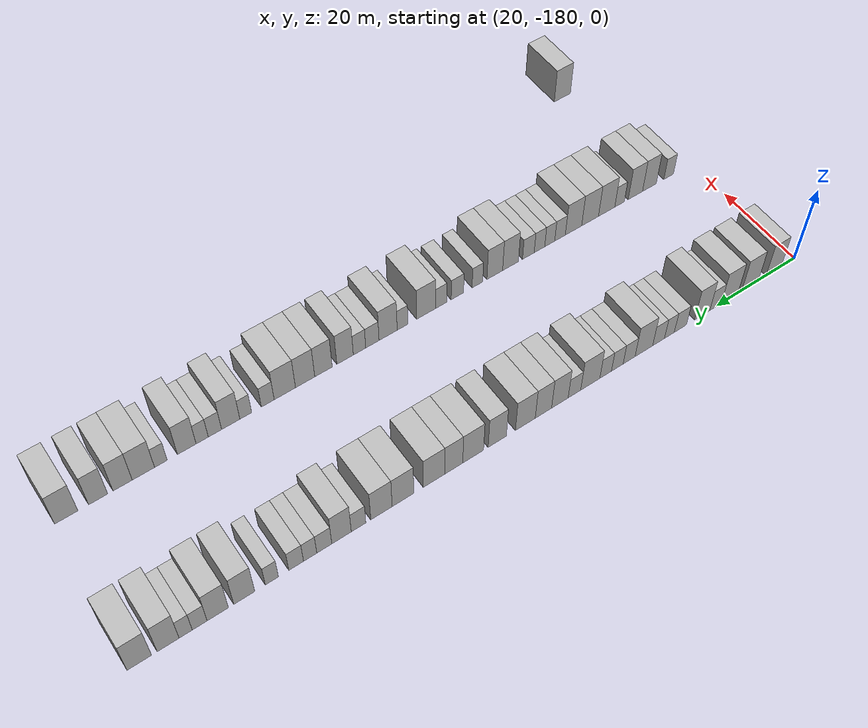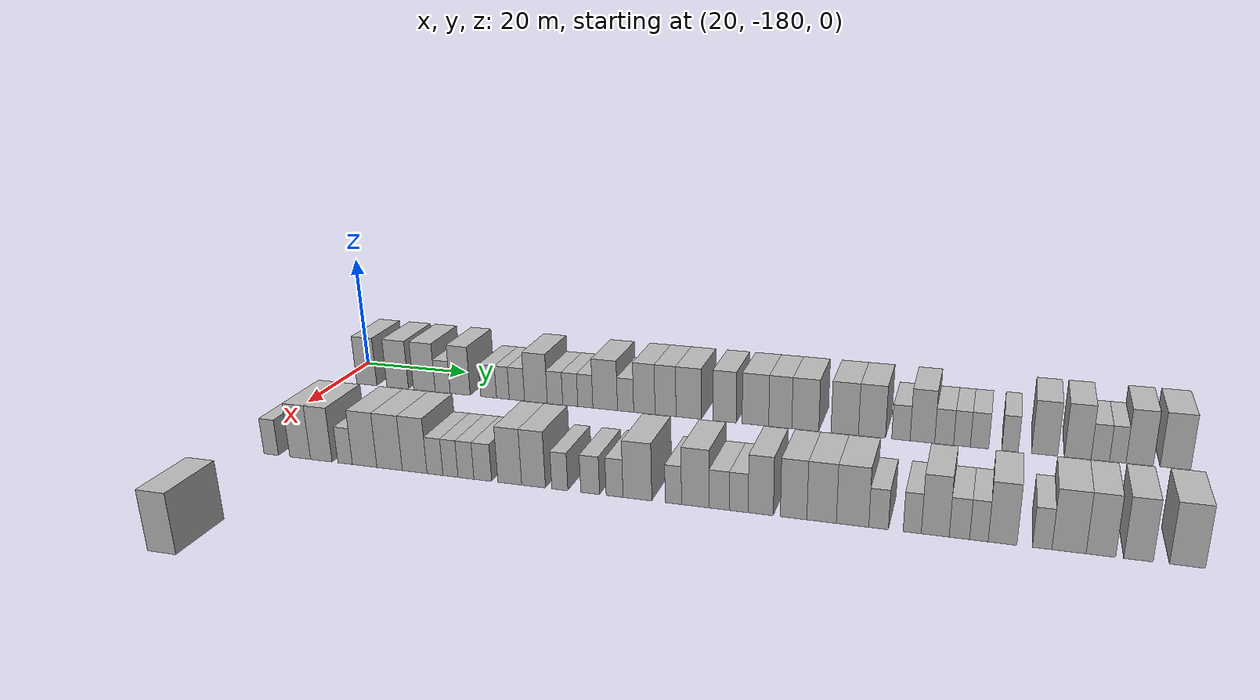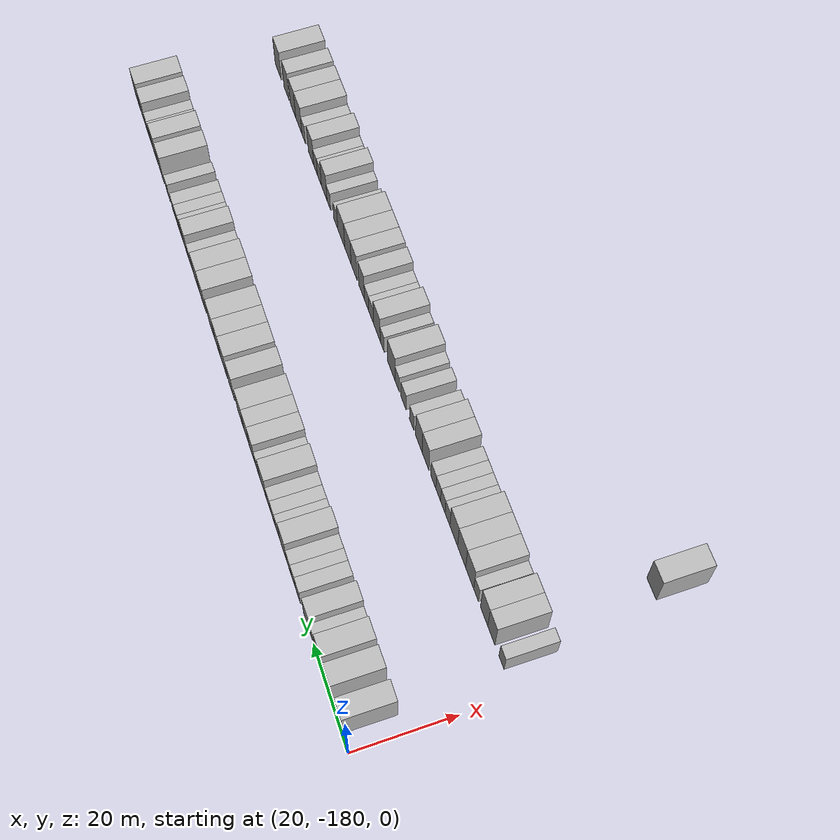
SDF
<sdf version="1.6">
 <world name="default">
  <model name="building_74">
   <static>1</static>
   <pose>25.0000 -174.5573 0 0.000000 0.000000 0.000000</pose>
   <link name="link">
    <pose>0 0 4.50 0 0 0</pose>
    <collision name="collision"><geometry><box><size>10.0000 4.0195 9.0000</size></box></geometry></collision>
    <visual name="visual">
     <cast_shadows>0</cast_shadows>
     <geometry><box><size>10.0000 4.0195 9.0000</size></box></geometry>
     <material>
      <script>
       <uri>model://HANNAS_wall/materials/scripts</uri>
       <uri>model://HANNAS_wall/materials/textures</uri>
       <name>vrc/HANNAS_wall</name>
      </script>
     </material>
    </visual>
   </link>
  </model>
  <model name="building_75">
   <static>1</static>
   <pose>25.0000 -168.4147 0 0.000000 0.000000 0.000000</pose>
   <link name="link">
    <pose>0 0 4.50 0 0 0</pose>
    <collision name="collision"><geometry><box><size>10.0000 4.2658 9.0000</size></box></geometry></collision>
    <visual name="visual">
     <cast_shadows>0</cast_shadows>
     <geometry><box><size>10.0000 4.2658 9.0000</size></box></geometry>
     <material>
      <script>
       <uri>model://HANNAS_wall/materials/scripts</uri>
       <uri>model://HANNAS_wall/materials/textures</uri>
       <name>vrc/HANNAS_wall</name>
      </script>
     </material>
    </visual>
   </link>
  </model>
  <model name="building_76">
   <static>1</static>
   <pose>25.0000 -163.1698 0 0.000000 0.000000 0.000000</pose>
   <link name="link">
    <pose>0 0 4.50 0 0 0</pose>
    <collision name="collision"><geometry><box><size>10.0000 4.2240 9.0000</size></box></geometry></collision>
    <visual name="visual">
     <cast_shadows>0</cast_shadows>
     <geometry><box><size>10.0000 4.2240 9.0000</size></box></geometry>
     <material>
      <script>
       <uri>model://HANNAS_wall/materials/scripts</uri>
       <uri>model://HANNAS_wall/materials/textures</uri>
       <name>vrc/HANNAS_wall</name>
      </script>
     </material>
    </visual>
   </link>
  </model>
  <model name="building_77">
   <static>1</static>
   <pose>25.0000 -159.6030 0 0.000000 0.000000 0.000000</pose>
   <link name="link">
    <pose>0 0 3.00 0 0 0</pose>
    <collision name="collision"><geometry><box><size>10.0000 2.9098 6.0000</size></box></geometry></collision>
    <visual name="visual">
     <cast_shadows>0</cast_shadows>
     <geometry><box><size>10.0000 2.9098 6.0000</size></box></geometry>
     <material>
      <script>
       <uri>model://HANNAS_wall/materials/scripts</uri>
       <uri>model://HANNAS_wall/materials/textures</uri>
       <name>vrc/HANNAS_wall</name>
      </script>
     </material>
    </visual>
   </link>
  </model>
  <model name="building_78">
   <static>1</static>
   <pose>25.0000 -156.2259 0 0.000000 0.000000 0.000000</pose>
   <link name="link">
    <pose>0 0 4.50 0 0 0</pose>
    <collision name="collision"><geometry><box><size>10.0000 3.8443 9.0000</size></box></geometry></collision>
    <visual name="visual">
     <cast_shadows>0</cast_shadows>
     <geometry><box><size>10.0000 3.8443 9.0000</size></box></geometry>
     <material>
      <script>
       <uri>model://HANNAS_wall/materials/scripts</uri>
       <uri>model://HANNAS_wall/materials/textures</uri>
       <name>vrc/HANNAS_wall</name>
      </script>
     </material>
    </visual>
   </link>
  </model>
  <model name="building_79">
   <static>1</static>
   <pose>25.0000 -150.8061 0 0.000000 0.000000 0.000000</pose>
   <link name="link">
    <pose>0 0 3.00 0 0 0</pose>
    <collision name="collision"><geometry><box><size>10.0000 2.9952 6.0000</size></box></geometry></collision>
    <visual name="visual">
     <cast_shadows>0</cast_shadows>
     <geometry><box><size>10.0000 2.9952 6.0000</size></box></geometry>
     <material>
      <script>
       <uri>model://HANNAS_wall/materials/scripts</uri>
       <uri>model://HANNAS_wall/materials/textures</uri>
       <name>vrc/HANNAS_wall</name>
      </script>
     </material>
    </visual>
   </link>
  </model>
  <model name="building_80">
   <static>1</static>
   <pose>25.0000 -148.1057 0 0.000000 0.000000 0.000000</pose>
   <link name="link">
    <pose>0 0 3.00 0 0 0</pose>
    <collision name="collision"><geometry><box><size>10.0000 2.4057 6.0000</size></box></geometry></collision>
    <visual name="visual">
     <cast_shadows>0</cast_shadows>
     <geometry><box><size>10.0000 2.4057 6.0000</size></box></geometry>
     <material>
      <script>
       <uri>model://HANNAS_wall/materials/scripts</uri>
       <uri>model://HANNAS_wall/materials/textures</uri>
       <name>vrc/HANNAS_wall</name>
      </script>
     </material>
    </visual>
   </link>
  </model>
  <model name="building_81">
   <static>1</static>
   <pose>25.0000 -145.4674 0 0.000000 0.000000 0.000000</pose>
   <link name="link">
    <pose>0 0 3.00 0 0 0</pose>
    <collision name="collision"><geometry><box><size>10.0000 2.8709 6.0000</size></box></geometry></collision>
    <visual name="visual">
     <cast_shadows>0</cast_shadows>
     <geometry><box><size>10.0000 2.8709 6.0000</size></box></geometry>
     <material>
      <script>
       <uri>model://HANNAS_wall/materials/scripts</uri>
       <uri>model://HANNAS_wall/materials/textures</uri>
       <name>vrc/HANNAS_wall</name>
      </script>
     </material>
    </visual>
   </link>
  </model>
  <model name="building_82">
   <static>1</static>
   <pose>25.0000 -141.9164 0 0.000000 0.000000 0.000000</pose>
   <link name="link">
    <pose>0 0 4.50 0 0 0</pose>
    <collision name="collision"><geometry><box><size>10.0000 4.2312 9.0000</size></box></geometry></collision>
    <visual name="visual">
     <cast_shadows>0</cast_shadows>
     <geometry><box><size>10.0000 4.2312 9.0000</size></box></geometry>
     <material>
      <script>
       <uri>model://HANNAS_wall/materials/scripts</uri>
       <uri>model://HANNAS_wall/materials/textures</uri>
       <name>vrc/HANNAS_wall</name>
      </script>
     </material>
    </visual>
   </link>
  </model>
  <model name="building_83">
   <static>1</static>
   <pose>25.0000 -138.3829 0 0.000000 0.000000 0.000000</pose>
   <link name="link">
    <pose>0 0 3.00 0 0 0</pose>
    <collision name="collision"><geometry><box><size>10.0000 2.8357 6.0000</size></box></geometry></collision>
    <visual name="visual">
     <cast_shadows>0</cast_shadows>
     <geometry><box><size>10.0000 2.8357 6.0000</size></box></geometry>
     <material>
      <script>
       <uri>model://HANNAS_wall/materials/scripts</uri>
       <uri>model://HANNAS_wall/materials/textures</uri>
       <name>vrc/HANNAS_wall</name>
      </script>
     </material>
    </visual>
   </link>
  </model>
  <model name="building_84">
   <static>1</static>
   <pose>25.0000 -135.5813 0 0.000000 0.000000 0.000000</pose>
   <link name="link">
    <pose>0 0 3.00 0 0 0</pose>
    <collision name="collision"><geometry><box><size>10.0000 2.7675 6.0000</size></box></geometry></collision>
    <visual name="visual">
     <cast_shadows>0</cast_shadows>
     <geometry><box><size>10.0000 2.7675 6.0000</size></box></geometry>
     <material>
      <script>
       <uri>model://HANNAS_wall/materials/scripts</uri>
       <uri>model://HANNAS_wall/materials/textures</uri>
       <name>vrc/HANNAS_wall</name>
      </script>
     </material>
    </visual>
   </link>
  </model>
  <model name="building_85">
   <static>1</static>
   <pose>25.0000 -132.8319 0 0.000000 0.000000 0.000000</pose>
   <link name="link">
    <pose>0 0 3.00 0 0 0</pose>
    <collision name="collision"><geometry><box><size>10.0000 2.7314 6.0000</size></box></geometry></collision>
    <visual name="visual">
     <cast_shadows>0</cast_shadows>
     <geometry><box><size>10.0000 2.7314 6.0000</size></box></geometry>
     <material>
      <script>
       <uri>model://HANNAS_wall/materials/scripts</uri>
       <uri>model://HANNAS_wall/materials/textures</uri>
       <name>vrc/HANNAS_wall</name>
      </script>
     </material>
    </visual>
   </link>
  </model>
  <model name="building_86">
   <static>1</static>
   <pose>25.0000 -129.2429 0 0.000000 0.000000 0.000000</pose>
   <link name="link">
    <pose>0 0 4.50 0 0 0</pose>
    <collision name="collision"><geometry><box><size>10.0000 4.4465 9.0000</size></box></geometry></collision>
    <visual name="visual">
     <cast_shadows>0</cast_shadows>
     <geometry><box><size>10.0000 4.4465 9.0000</size></box></geometry>
     <material>
      <script>
       <uri>model://HANNAS_wall/materials/scripts</uri>
       <uri>model://HANNAS_wall/materials/textures</uri>
       <name>vrc/HANNAS_wall</name>
      </script>
     </material>
    </visual>
   </link>
  </model>
  <model name="building_87">
   <static>1</static>
   <pose>25.0000 -125.5737 0 0.000000 0.000000 0.000000</pose>
   <link name="link">
    <pose>0 0 3.00 0 0 0</pose>
    <collision name="collision"><geometry><box><size>10.0000 2.8920 6.0000</size></box></geometry></collision>
    <visual name="visual">
     <cast_shadows>0</cast_shadows>
     <geometry><box><size>10.0000 2.8920 6.0000</size></box></geometry>
     <material>
      <script>
       <uri>model://HANNAS_wall/materials/scripts</uri>
       <uri>model://HANNAS_wall/materials/textures</uri>
       <name>vrc/HANNAS_wall</name>
      </script>
     </material>
    </visual>
   </link>
  </model>
  <model name="building_88">
   <static>1</static>
   <pose>25.0000 -122.2355 0 0.000000 0.000000 0.000000</pose>
   <link name="link">
    <pose>0 0 4.50 0 0 0</pose>
    <collision name="collision"><geometry><box><size>10.0000 3.7842 9.0000</size></box></geometry></collision>
    <visual name="visual">
     <cast_shadows>0</cast_shadows>
     <geometry><box><size>10.0000 3.7842 9.0000</size></box></geometry>
     <material>
      <script>
       <uri>model://HANNAS_wall/materials/scripts</uri>
       <uri>model://HANNAS_wall/materials/textures</uri>
       <name>vrc/HANNAS_wall</name>
      </script>
     </material>
    </visual>
   </link>
  </model>
  <model name="building_89">
   <static>1</static>
   <pose>25.0000 -118.4990 0 0.000000 0.000000 0.000000</pose>
   <link name="link">
    <pose>0 0 4.50 0 0 0</pose>
    <collision name="collision"><geometry><box><size>10.0000 3.6889 9.0000</size></box></geometry></collision>
    <visual name="visual">
     <cast_shadows>0</cast_shadows>
     <geometry><box><size>10.0000 3.6889 9.0000</size></box></geometry>
     <material>
      <script>
       <uri>model://HANNAS_wall/materials/scripts</uri>
       <uri>model://HANNAS_wall/materials/textures</uri>
       <name>vrc/HANNAS_wall</name>
      </script>
     </material>
    </visual>
   </link>
  </model>
  <model name="building_90">
   <static>1</static>
   <pose>25.0000 -114.4479 0 0.000000 0.000000 0.000000</pose>
   <link name="link">
    <pose>0 0 4.50 0 0 0</pose>
    <collision name="collision"><geometry><box><size>10.0000 4.4132 9.0000</size></box></geometry></collision>
    <visual name="visual">
     <cast_shadows>0</cast_shadows>
     <geometry><box><size>10.0000 4.4132 9.0000</size></box></geometry>
     <material>
      <script>
       <uri>model://HANNAS_wall/materials/scripts</uri>
       <uri>model://HANNAS_wall/materials/textures</uri>
       <name>vrc/HANNAS_wall</name>
      </script>
     </material>
    </visual>
   </link>
  </model>
  <model name="building_91">
   <static>1</static>
   <pose>25.0000 -108.2431 0 0.000000 0.000000 0.000000</pose>
   <link name="link">
    <pose>0 0 4.50 0 0 0</pose>
    <collision name="collision"><geometry><box><size>10.0000 3.9962 9.0000</size></box></geometry></collision>
    <visual name="visual">
     <cast_shadows>0</cast_shadows>
     <geometry><box><size>10.0000 3.9962 9.0000</size></box></geometry>
     <material>
      <script>
       <uri>model://HANNAS_wall/materials/scripts</uri>
       <uri>model://HANNAS_wall/materials/textures</uri>
       <name>vrc/HANNAS_wall</name>
      </script>
     </material>
    </visual>
   </link>
  </model>
  <model name="building_92">
   <static>1</static>
   <pose>25.0000 -102.9992 0 0.000000 0.000000 0.000000</pose>
   <link name="link">
    <pose>0 0 4.50 0 0 0</pose>
    <collision name="collision"><geometry><box><size>10.0000 4.4916 9.0000</size></box></geometry></collision>
    <visual name="visual">
     <cast_shadows>0</cast_shadows>
     <geometry><box><size>10.0000 4.4916 9.0000</size></box></geometry>
     <material>
      <script>
       <uri>model://HANNAS_wall/materials/scripts</uri>
       <uri>model://HANNAS_wall/materials/textures</uri>
       <name>vrc/HANNAS_wall</name>
      </script>
     </material>
    </visual>
   </link>
  </model>
  <model name="building_93">
   <static>1</static>
   <pose>25.0000 -98.8216 0 0.000000 0.000000 0.000000</pose>
   <link name="link">
    <pose>0 0 4.50 0 0 0</pose>
    <collision name="collision"><geometry><box><size>10.0000 3.8637 9.0000</size></box></geometry></collision>
    <visual name="visual">
     <cast_shadows>0</cast_shadows>
     <geometry><box><size>10.0000 3.8637 9.0000</size></box></geometry>
     <material>
      <script>
       <uri>model://HANNAS_wall/materials/scripts</uri>
       <uri>model://HANNAS_wall/materials/textures</uri>
       <name>vrc/HANNAS_wall</name>
      </script>
     </material>
    </visual>
   </link>
  </model>
  <model name="building_94">
   <static>1</static>
   <pose>25.0000 -94.6421 0 0.000000 0.000000 0.000000</pose>
   <link name="link">
    <pose>0 0 4.50 0 0 0</pose>
    <collision name="collision"><geometry><box><size>10.0000 4.4952 9.0000</size></box></geometry></collision>
    <visual name="visual">
     <cast_shadows>0</cast_shadows>
     <geometry><box><size>10.0000 4.4952 9.0000</size></box></geometry>
     <material>
      <script>
       <uri>model://HANNAS_wall/materials/scripts</uri>
       <uri>model://HANNAS_wall/materials/textures</uri>
       <name>vrc/HANNAS_wall</name>
      </script>
     </material>
    </visual>
   </link>
  </model>
  <model name="building_95">
   <static>1</static>
   <pose>25.0000 -88.1537 0 0.000000 0.000000 0.000000</pose>
   <link name="link">
    <pose>0 0 4.50 0 0 0</pose>
    <collision name="collision"><geometry><box><size>10.0000 4.4817 9.0000</size></box></geometry></collision>
    <visual name="visual">
     <cast_shadows>0</cast_shadows>
     <geometry><box><size>10.0000 4.4817 9.0000</size></box></geometry>
     <material>
      <script>
       <uri>model://HANNAS_wall/materials/scripts</uri>
       <uri>model://HANNAS_wall/materials/textures</uri>
       <name>vrc/HANNAS_wall</name>
      </script>
     </material>
    </visual>
   </link>
  </model>
  <model name="building_96">
   <static>1</static>
   <pose>25.0000 -83.7280 0 0.000000 0.000000 0.000000</pose>
   <link name="link">
    <pose>0 0 4.50 0 0 0</pose>
    <collision name="collision"><geometry><box><size>10.0000 4.3697 9.0000</size></box></geometry></collision>
    <visual name="visual">
     <cast_shadows>0</cast_shadows>
     <geometry><box><size>10.0000 4.3697 9.0000</size></box></geometry>
     <material>
      <script>
       <uri>model://HANNAS_wall/materials/scripts</uri>
       <uri>model://HANNAS_wall/materials/textures</uri>
       <name>vrc/HANNAS_wall</name>
      </script>
     </material>
    </visual>
   </link>
  </model>
  <model name="building_97">
   <static>1</static>
   <pose>25.0000 -79.0770 0 0.000000 0.000000 0.000000</pose>
   <link name="link">
    <pose>0 0 3.00 0 0 0</pose>
    <collision name="collision"><geometry><box><size>10.0000 2.9321 6.0000</size></box></geometry></collision>
    <visual name="visual">
     <cast_shadows>0</cast_shadows>
     <geometry><box><size>10.0000 2.9321 6.0000</size></box></geometry>
     <material>
      <script>
       <uri>model://HANNAS_wall/materials/scripts</uri>
       <uri>model://HANNAS_wall/materials/textures</uri>
       <name>vrc/HANNAS_wall</name>
      </script>
     </material>
    </visual>
   </link>
  </model>
  <model name="building_98">
   <static>1</static>
   <pose>25.0000 -75.6695 0 0.000000 0.000000 0.000000</pose>
   <link name="link">
    <pose>0 0 4.50 0 0 0</pose>
    <collision name="collision"><geometry><box><size>10.0000 3.8829 9.0000</size></box></geometry></collision>
    <visual name="visual">
     <cast_shadows>0</cast_shadows>
     <geometry><box><size>10.0000 3.8829 9.0000</size></box></geometry>
     <material>
      <script>
       <uri>model://HANNAS_wall/materials/scripts</uri>
       <uri>model://HANNAS_wall/materials/textures</uri>
       <name>vrc/HANNAS_wall</name>
      </script>
     </material>
    </visual>
   </link>
  </model>
  <model name="building_99">
   <static>1</static>
   <pose>25.0000 -72.2417 0 0.000000 0.000000 0.000000</pose>
   <link name="link">
    <pose>0 0 3.00 0 0 0</pose>
    <collision name="collision"><geometry><box><size>10.0000 2.9727 6.0000</size></box></geometry></collision>
    <visual name="visual">
     <cast_shadows>0</cast_shadows>
     <geometry><box><size>10.0000 2.9727 6.0000</size></box></geometry>
     <material>
      <script>
       <uri>model://HANNAS_wall/materials/scripts</uri>
       <uri>model://HANNAS_wall/materials/textures</uri>
       <name>vrc/HANNAS_wall</name>
      </script>
     </material>
    </visual>
   </link>
  </model>
  <model name="building_100">
   <static>1</static>
   <pose>25.0000 -69.4564 0 0.000000 0.000000 0.000000</pose>
   <link name="link">
    <pose>0 0 3.00 0 0 0</pose>
    <collision name="collision"><geometry><box><size>10.0000 2.5979 6.0000</size></box></geometry></collision>
    <visual name="visual">
     <cast_shadows>0</cast_shadows>
     <geometry><box><size>10.0000 2.5979 6.0000</size></box></geometry>
     <material>
      <script>
       <uri>model://HANNAS_wall/materials/scripts</uri>
       <uri>model://HANNAS_wall/materials/textures</uri>
       <name>vrc/HANNAS_wall</name>
      </script>
     </material>
    </visual>
   </link>
  </model>
  <model name="building_101">
   <static>1</static>
   <pose>25.0000 -66.7267 0 0.000000 0.000000 0.000000</pose>
   <link name="link">
    <pose>0 0 3.00 0 0 0</pose>
    <collision name="collision"><geometry><box><size>10.0000 2.8617 6.0000</size></box></geometry></collision>
    <visual name="visual">
     <cast_shadows>0</cast_shadows>
     <geometry><box><size>10.0000 2.8617 6.0000</size></box></geometry>
     <material>
      <script>
       <uri>model://HANNAS_wall/materials/scripts</uri>
       <uri>model://HANNAS_wall/materials/textures</uri>
       <name>vrc/HANNAS_wall</name>
      </script>
     </material>
    </visual>
   </link>
  </model>
  <model name="building_102">
   <static>1</static>
   <pose>25.0000 -62.0314 0 0.000000 0.000000 0.000000</pose>
   <link name="link">
    <pose>0 0 3.00 0 0 0</pose>
    <collision name="collision"><geometry><box><size>10.0000 2.5289 6.0000</size></box></geometry></collision>
    <visual name="visual">
     <cast_shadows>0</cast_shadows>
     <geometry><box><size>10.0000 2.5289 6.0000</size></box></geometry>
     <material>
      <script>
       <uri>model://HANNAS_wall/materials/scripts</uri>
       <uri>model://HANNAS_wall/materials/textures</uri>
       <name>vrc/HANNAS_wall</name>
      </script>
     </material>
    </visual>
   </link>
  </model>
  <model name="building_103">
   <static>1</static>
   <pose>25.0000 -56.7847 0 0.000000 0.000000 0.000000</pose>
   <link name="link">
    <pose>0 0 4.50 0 0 0</pose>
    <collision name="collision"><geometry><box><size>10.0000 3.9644 9.0000</size></box></geometry></collision>
    <visual name="visual">
     <cast_shadows>0</cast_shadows>
     <geometry><box><size>10.0000 3.9644 9.0000</size></box></geometry>
     <material>
      <script>
       <uri>model://HANNAS_wall/materials/scripts</uri>
       <uri>model://HANNAS_wall/materials/textures</uri>
       <name>vrc/HANNAS_wall</name>
      </script>
     </material>
    </visual>
   </link>
  </model>
  <model name="building_104">
   <static>1</static>
   <pose>25.0000 -51.8219 0 0.000000 0.000000 0.000000</pose>
   <link name="link">
    <pose>0 0 4.50 0 0 0</pose>
    <collision name="collision"><geometry><box><size>10.0000 3.9611 9.0000</size></box></geometry></collision>
    <visual name="visual">
     <cast_shadows>0</cast_shadows>
     <geometry><box><size>10.0000 3.9611 9.0000</size></box></geometry>
     <material>
      <script>
       <uri>model://HANNAS_wall/materials/scripts</uri>
       <uri>model://HANNAS_wall/materials/textures</uri>
       <name>vrc/HANNAS_wall</name>
      </script>
     </material>
    </visual>
   </link>
  </model>
  <model name="building_105">
   <static>1</static>
   <pose>25.0000 -48.4789 0 0.000000 0.000000 0.000000</pose>
   <link name="link">
    <pose>0 0 3.00 0 0 0</pose>
    <collision name="collision"><geometry><box><size>10.0000 2.7249 6.0000</size></box></geometry></collision>
    <visual name="visual">
     <cast_shadows>0</cast_shadows>
     <geometry><box><size>10.0000 2.7249 6.0000</size></box></geometry>
     <material>
      <script>
       <uri>model://HANNAS_wall/materials/scripts</uri>
       <uri>model://HANNAS_wall/materials/textures</uri>
       <name>vrc/HANNAS_wall</name>
      </script>
     </material>
    </visual>
   </link>
  </model>
  <model name="building_106">
   <static>1</static>
   <pose>25.0000 -45.9106 0 0.000000 0.000000 0.000000</pose>
   <link name="link">
    <pose>0 0 3.00 0 0 0</pose>
    <collision name="collision"><geometry><box><size>10.0000 2.4117 6.0000</size></box></geometry></collision>
    <visual name="visual">
     <cast_shadows>0</cast_shadows>
     <geometry><box><size>10.0000 2.4117 6.0000</size></box></geometry>
     <material>
      <script>
       <uri>model://HANNAS_wall/materials/scripts</uri>
       <uri>model://HANNAS_wall/materials/textures</uri>
       <name>vrc/HANNAS_wall</name>
      </script>
     </material>
    </visual>
   </link>
  </model>
  <model name="building_107">
   <static>1</static>
   <pose>25.0000 -42.7206 0 0.000000 0.000000 0.000000</pose>
   <link name="link">
    <pose>0 0 4.50 0 0 0</pose>
    <collision name="collision"><geometry><box><size>10.0000 3.9683 9.0000</size></box></geometry></collision>
    <visual name="visual">
     <cast_shadows>0</cast_shadows>
     <geometry><box><size>10.0000 3.9683 9.0000</size></box></geometry>
     <material>
      <script>
       <uri>model://HANNAS_wall/materials/scripts</uri>
       <uri>model://HANNAS_wall/materials/textures</uri>
       <name>vrc/HANNAS_wall</name>
      </script>
     </material>
    </visual>
   </link>
  </model>
  <model name="building_108">
   <static>1</static>
   <pose>25.0000 -37.5470 0 0.000000 0.000000 0.000000</pose>
   <link name="link">
    <pose>0 0 4.50 0 0 0</pose>
    <collision name="collision"><geometry><box><size>10.0000 4.3787 9.0000</size></box></geometry></collision>
    <visual name="visual">
     <cast_shadows>0</cast_shadows>
     <geometry><box><size>10.0000 4.3787 9.0000</size></box></geometry>
     <material>
      <script>
       <uri>model://HANNAS_wall/materials/scripts</uri>
       <uri>model://HANNAS_wall/materials/textures</uri>
       <name>vrc/HANNAS_wall</name>
      </script>
     </material>
    </visual>
   </link>
  </model>
  <model name="building_290">
   <static>1</static>
   <pose>55.0000 -173.7258 0 0.000000 0.000000 0.000000</pose>
   <link name="link">
    <pose>0 0 3.00 0 0 0</pose>
    <collision name="collision"><geometry><box><size>10.0000 2.5674 6.0000</size></box></geometry></collision>
    <visual name="visual">
     <cast_shadows>0</cast_shadows>
     <geometry><box><size>10.0000 2.5674 6.0000</size></box></geometry>
     <material>
      <script>
       <uri>model://HANNAS_wall/materials/scripts</uri>
       <uri>model://HANNAS_wall/materials/textures</uri>
       <name>vrc/HANNAS_wall</name>
      </script>
     </material>
    </visual>
   </link>
  </model>
  <model name="building_291">
   <static>1</static>
   <pose>55.0000 -168.6255 0 0.000000 0.000000 0.000000</pose>
   <link name="link">
    <pose>0 0 4.50 0 0 0</pose>
    <collision name="collision"><geometry><box><size>10.0000 3.6331 9.0000</size></box></geometry></collision>
    <visual name="visual">
     <cast_shadows>0</cast_shadows>
     <geometry><box><size>10.0000 3.6331 9.0000</size></box></geometry>
     <material>
      <script>
       <uri>model://HANNAS_wall/materials/scripts</uri>
       <uri>model://HANNAS_wall/materials/textures</uri>
       <name>vrc/HANNAS_wall</name>
      </script>
     </material>
    </visual>
   </link>
  </model>
  <model name="building_292">
   <static>1</static>
   <pose>55.0000 -164.9386 0 0.000000 0.000000 0.000000</pose>
   <link name="link">
    <pose>0 0 4.50 0 0 0</pose>
    <collision name="collision"><geometry><box><size>10.0000 3.7407 9.0000</size></box></geometry></collision>
    <visual name="visual">
     <cast_shadows>0</cast_shadows>
     <geometry><box><size>10.0000 3.7407 9.0000</size></box></geometry>
     <material>
      <script>
       <uri>model://HANNAS_wall/materials/scripts</uri>
       <uri>model://HANNAS_wall/materials/textures</uri>
       <name>vrc/HANNAS_wall</name>
      </script>
     </material>
    </visual>
   </link>
  </model>
  <model name="building_293">
   <static>1</static>
   <pose>55.0000 -160.8263 0 0.000000 0.000000 0.000000</pose>
   <link name="link">
    <pose>0 0 3.00 0 0 0</pose>
    <collision name="collision"><geometry><box><size>10.0000 2.4839 6.0000</size></box></geometry></collision>
    <visual name="visual">
     <cast_shadows>0</cast_shadows>
     <geometry><box><size>10.0000 2.4839 6.0000</size></box></geometry>
     <material>
      <script>
       <uri>model://HANNAS_wall/materials/scripts</uri>
       <uri>model://HANNAS_wall/materials/textures</uri>
       <name>vrc/HANNAS_wall</name>
      </script>
     </material>
    </visual>
   </link>
  </model>
  <model name="building_294">
   <static>1</static>
   <pose>55.0000 -157.4975 0 0.000000 0.000000 0.000000</pose>
   <link name="link">
    <pose>0 0 4.50 0 0 0</pose>
    <collision name="collision"><geometry><box><size>10.0000 4.1737 9.0000</size></box></geometry></collision>
    <visual name="visual">
     <cast_shadows>0</cast_shadows>
     <geometry><box><size>10.0000 4.1737 9.0000</size></box></geometry>
     <material>
      <script>
       <uri>model://HANNAS_wall/materials/scripts</uri>
       <uri>model://HANNAS_wall/materials/textures</uri>
       <name>vrc/HANNAS_wall</name>
      </script>
     </material>
    </visual>
   </link>
  </model>
  <model name="building_295">
   <static>1</static>
   <pose>55.0000 -153.2698 0 0.000000 0.000000 0.000000</pose>
   <link name="link">
    <pose>0 0 4.50 0 0 0</pose>
    <collision name="collision"><geometry><box><size>10.0000 4.2818 9.0000</size></box></geometry></collision>
    <visual name="visual">
     <cast_shadows>0</cast_shadows>
     <geometry><box><size>10.0000 4.2818 9.0000</size></box></geometry>
     <material>
      <script>
       <uri>model://HANNAS_wall/materials/scripts</uri>
       <uri>model://HANNAS_wall/materials/textures</uri>
       <name>vrc/HANNAS_wall</name>
      </script>
     </material>
    </visual>
   </link>
  </model>
  <model name="building_296">
   <static>1</static>
   <pose>55.0000 -149.0750 0 0.000000 0.000000 0.000000</pose>
   <link name="link">
    <pose>0 0 4.50 0 0 0</pose>
    <collision name="collision"><geometry><box><size>10.0000 4.1077 9.0000</size></box></geometry></collision>
    <visual name="visual">
     <cast_shadows>0</cast_shadows>
     <geometry><box><size>10.0000 4.1077 9.0000</size></box></geometry>
     <material>
      <script>
       <uri>model://HANNAS_wall/materials/scripts</uri>
       <uri>model://HANNAS_wall/materials/textures</uri>
       <name>vrc/HANNAS_wall</name>
      </script>
     </material>
    </visual>
   </link>
  </model>
  <model name="building_297">
   <static>1</static>
   <pose>55.0000 -145.7051 0 0.000000 0.000000 0.000000</pose>
   <link name="link">
    <pose>0 0 3.00 0 0 0</pose>
    <collision name="collision"><geometry><box><size>10.0000 2.6322 6.0000</size></box></geometry></collision>
    <visual name="visual">
     <cast_shadows>0</cast_shadows>
     <geometry><box><size>10.0000 2.6322 6.0000</size></box></geometry>
     <material>
      <script>
       <uri>model://HANNAS_wall/materials/scripts</uri>
       <uri>model://HANNAS_wall/materials/textures</uri>
       <name>vrc/HANNAS_wall</name>
      </script>
     </material>
    </visual>
   </link>
  </model>
  <model name="building_298">
   <static>1</static>
   <pose>55.0000 -143.1531 0 0.000000 0.000000 0.000000</pose>
   <link name="link">
    <pose>0 0 3.00 0 0 0</pose>
    <collision name="collision"><geometry><box><size>10.0000 2.4718 6.0000</size></box></geometry></collision>
    <visual name="visual">
     <cast_shadows>0</cast_shadows>
     <geometry><box><size>10.0000 2.4718 6.0000</size></box></geometry>
     <material>
      <script>
       <uri>model://HANNAS_wall/materials/scripts</uri>
       <uri>model://HANNAS_wall/materials/textures</uri>
       <name>vrc/HANNAS_wall</name>
      </script>
     </material>
    </visual>
   </link>
  </model>
  <model name="building_299">
   <static>1</static>
   <pose>55.0000 -140.6236 0 0.000000 0.000000 0.000000</pose>
   <link name="link">
    <pose>0 0 3.00 0 0 0</pose>
    <collision name="collision"><geometry><box><size>10.0000 2.5873 6.0000</size></box></geometry></collision>
    <visual name="visual">
     <cast_shadows>0</cast_shadows>
     <geometry><box><size>10.0000 2.5873 6.0000</size></box></geometry>
     <material>
      <script>
       <uri>model://HANNAS_wall/materials/scripts</uri>
       <uri>model://HANNAS_wall/materials/textures</uri>
       <name>vrc/HANNAS_wall</name>
      </script>
     </material>
    </visual>
   </link>
  </model>
  <model name="building_300">
   <static>1</static>
   <pose>55.0000 -137.8982 0 0.000000 0.000000 0.000000</pose>
   <link name="link">
    <pose>0 0 3.00 0 0 0</pose>
    <collision name="collision"><geometry><box><size>10.0000 2.8634 6.0000</size></box></geometry></collision>
    <visual name="visual">
     <cast_shadows>0</cast_shadows>
     <geometry><box><size>10.0000 2.8634 6.0000</size></box></geometry>
     <material>
      <script>
       <uri>model://HANNAS_wall/materials/scripts</uri>
       <uri>model://HANNAS_wall/materials/textures</uri>
       <name>vrc/HANNAS_wall</name>
      </script>
     </material>
    </visual>
   </link>
  </model>
  <model name="building_301">
   <static>1</static>
   <pose>55.0000 -133.5677 0 0.000000 0.000000 0.000000</pose>
   <link name="link">
    <pose>0 0 4.50 0 0 0</pose>
    <collision name="collision"><geometry><box><size>10.0000 3.7976 9.0000</size></box></geometry></collision>
    <visual name="visual">
     <cast_shadows>0</cast_shadows>
     <geometry><box><size>10.0000 3.7976 9.0000</size></box></geometry>
     <material>
      <script>
       <uri>model://HANNAS_wall/materials/scripts</uri>
       <uri>model://HANNAS_wall/materials/textures</uri>
       <name>vrc/HANNAS_wall</name>
      </script>
     </material>
    </visual>
   </link>
  </model>
  <model name="building_302">
   <static>1</static>
   <pose>55.0000 -129.7905 0 0.000000 0.000000 0.000000</pose>
   <link name="link">
    <pose>0 0 4.50 0 0 0</pose>
    <collision name="collision"><geometry><box><size>10.0000 3.7569 9.0000</size></box></geometry></collision>
    <visual name="visual">
     <cast_shadows>0</cast_shadows>
     <geometry><box><size>10.0000 3.7569 9.0000</size></box></geometry>
     <material>
      <script>
       <uri>model://HANNAS_wall/materials/scripts</uri>
       <uri>model://HANNAS_wall/materials/textures</uri>
       <name>vrc/HANNAS_wall</name>
      </script>
     </material>
    </visual>
   </link>
  </model>
  <model name="building_303">
   <static>1</static>
   <pose>55.0000 -125.6593 0 0.000000 0.000000 0.000000</pose>
   <link name="link">
    <pose>0 0 3.00 0 0 0</pose>
    <collision name="collision"><geometry><box><size>10.0000 2.5055 6.0000</size></box></geometry></collision>
    <visual name="visual">
     <cast_shadows>0</cast_shadows>
     <geometry><box><size>10.0000 2.5055 6.0000</size></box></geometry>
     <material>
      <script>
       <uri>model://HANNAS_wall/materials/scripts</uri>
       <uri>model://HANNAS_wall/materials/textures</uri>
       <name>vrc/HANNAS_wall</name>
      </script>
     </material>
    </visual>
   </link>
  </model>
  <model name="building_304">
   <static>1</static>
   <pose>55.0000 -120.9526 0 0.000000 0.000000 0.000000</pose>
   <link name="link">
    <pose>0 0 3.00 0 0 0</pose>
    <collision name="collision"><geometry><box><size>10.0000 2.9080 6.0000</size></box></geometry></collision>
    <visual name="visual">
     <cast_shadows>0</cast_shadows>
     <geometry><box><size>10.0000 2.9080 6.0000</size></box></geometry>
     <material>
      <script>
       <uri>model://HANNAS_wall/materials/scripts</uri>
       <uri>model://HANNAS_wall/materials/textures</uri>
       <name>vrc/HANNAS_wall</name>
      </script>
     </material>
    </visual>
   </link>
  </model>
  <model name="building_305">
   <static>1</static>
   <pose>55.0000 -117.2067 0 0.000000 0.000000 0.000000</pose>
   <link name="link">
    <pose>0 0 3.00 0 0 0</pose>
    <collision name="collision"><geometry><box><size>10.0000 2.5838 6.0000</size></box></geometry></collision>
    <visual name="visual">
     <cast_shadows>0</cast_shadows>
     <geometry><box><size>10.0000 2.5838 6.0000</size></box></geometry>
     <material>
      <script>
       <uri>model://HANNAS_wall/materials/scripts</uri>
       <uri>model://HANNAS_wall/materials/textures</uri>
       <name>vrc/HANNAS_wall</name>
      </script>
     </material>
    </visual>
   </link>
  </model>
  <model name="building_306">
   <static>1</static>
   <pose>55.0000 -113.7410 0 0.000000 0.000000 0.000000</pose>
   <link name="link">
    <pose>0 0 4.50 0 0 0</pose>
    <collision name="collision"><geometry><box><size>10.0000 4.3477 9.0000</size></box></geometry></collision>
    <visual name="visual">
     <cast_shadows>0</cast_shadows>
     <geometry><box><size>10.0000 4.3477 9.0000</size></box></geometry>
     <material>
      <script>
       <uri>model://HANNAS_wall/materials/scripts</uri>
       <uri>model://HANNAS_wall/materials/textures</uri>
       <name>vrc/HANNAS_wall</name>
      </script>
     </material>
    </visual>
   </link>
  </model>
  <model name="building_307">
   <static>1</static>
   <pose>55.0000 -108.3549 0 0.000000 0.000000 0.000000</pose>
   <link name="link">
    <pose>0 0 3.00 0 0 0</pose>
    <collision name="collision"><geometry><box><size>10.0000 2.4244 6.0000</size></box></geometry></collision>
    <visual name="visual">
     <cast_shadows>0</cast_shadows>
     <geometry><box><size>10.0000 2.4244 6.0000</size></box></geometry>
     <material>
      <script>
       <uri>model://HANNAS_wall/materials/scripts</uri>
       <uri>model://HANNAS_wall/materials/textures</uri>
       <name>vrc/HANNAS_wall</name>
      </script>
     </material>
    </visual>
   </link>
  </model>
  <model name="building_308">
   <static>1</static>
   <pose>55.0000 -105.1115 0 0.000000 0.000000 0.000000</pose>
   <link name="link">
    <pose>0 0 4.50 0 0 0</pose>
    <collision name="collision"><geometry><box><size>10.0000 4.0626 9.0000</size></box></geometry></collision>
    <visual name="visual">
     <cast_shadows>0</cast_shadows>
     <geometry><box><size>10.0000 4.0626 9.0000</size></box></geometry>
     <material>
      <script>
       <uri>model://HANNAS_wall/materials/scripts</uri>
       <uri>model://HANNAS_wall/materials/textures</uri>
       <name>vrc/HANNAS_wall</name>
      </script>
     </material>
    </visual>
   </link>
  </model>
  <model name="building_309">
   <static>1</static>
   <pose>55.0000 -101.6029 0 0.000000 0.000000 0.000000</pose>
   <link name="link">
    <pose>0 0 3.00 0 0 0</pose>
    <collision name="collision"><geometry><box><size>10.0000 2.9546 6.0000</size></box></geometry></collision>
    <visual name="visual">
     <cast_shadows>0</cast_shadows>
     <geometry><box><size>10.0000 2.9546 6.0000</size></box></geometry>
     <material>
      <script>
       <uri>model://HANNAS_wall/materials/scripts</uri>
       <uri>model://HANNAS_wall/materials/textures</uri>
       <name>vrc/HANNAS_wall</name>
      </script>
     </material>
    </visual>
   </link>
  </model>
  <model name="building_310">
   <static>1</static>
   <pose>55.0000 -98.7615 0 0.000000 0.000000 0.000000</pose>
   <link name="link">
    <pose>0 0 3.00 0 0 0</pose>
    <collision name="collision"><geometry><box><size>10.0000 2.7284 6.0000</size></box></geometry></collision>
    <visual name="visual">
     <cast_shadows>0</cast_shadows>
     <geometry><box><size>10.0000 2.7284 6.0000</size></box></geometry>
     <material>
      <script>
       <uri>model://HANNAS_wall/materials/scripts</uri>
       <uri>model://HANNAS_wall/materials/textures</uri>
       <name>vrc/HANNAS_wall</name>
      </script>
     </material>
    </visual>
   </link>
  </model>
  <model name="building_311">
   <static>1</static>
   <pose>55.0000 -95.5935 0 0.000000 0.000000 0.000000</pose>
   <link name="link">
    <pose>0 0 4.50 0 0 0</pose>
    <collision name="collision"><geometry><box><size>10.0000 3.6075 9.0000</size></box></geometry></collision>
    <visual name="visual">
     <cast_shadows>0</cast_shadows>
     <geometry><box><size>10.0000 3.6075 9.0000</size></box></geometry>
     <material>
      <script>
       <uri>model://HANNAS_wall/materials/scripts</uri>
       <uri>model://HANNAS_wall/materials/textures</uri>
       <name>vrc/HANNAS_wall</name>
      </script>
     </material>
    </visual>
   </link>
  </model>
  <model name="building_312">
   <static>1</static>
   <pose>55.0000 -90.9104 0 0.000000 0.000000 0.000000</pose>
   <link name="link">
    <pose>0 0 4.50 0 0 0</pose>
    <collision name="collision"><geometry><box><size>10.0000 3.7588 9.0000</size></box></geometry></collision>
    <visual name="visual">
     <cast_shadows>0</cast_shadows>
     <geometry><box><size>10.0000 3.7588 9.0000</size></box></geometry>
     <material>
      <script>
       <uri>model://HANNAS_wall/materials/scripts</uri>
       <uri>model://HANNAS_wall/materials/textures</uri>
       <name>vrc/HANNAS_wall</name>
      </script>
     </material>
    </visual>
   </link>
  </model>
  <model name="building_313">
   <static>1</static>
   <pose>55.0000 -86.9716 0 0.000000 0.000000 0.000000</pose>
   <link name="link">
    <pose>0 0 4.50 0 0 0</pose>
    <collision name="collision"><geometry><box><size>10.0000 4.1188 9.0000</size></box></geometry></collision>
    <visual name="visual">
     <cast_shadows>0</cast_shadows>
     <geometry><box><size>10.0000 4.1188 9.0000</size></box></geometry>
     <material>
      <script>
       <uri>model://HANNAS_wall/materials/scripts</uri>
       <uri>model://HANNAS_wall/materials/textures</uri>
       <name>vrc/HANNAS_wall</name>
      </script>
     </material>
    </visual>
   </link>
  </model>
  <model name="building_314">
   <static>1</static>
   <pose>55.0000 -82.6649 0 0.000000 0.000000 0.000000</pose>
   <link name="link">
    <pose>0 0 4.50 0 0 0</pose>
    <collision name="collision"><geometry><box><size>10.0000 4.4946 9.0000</size></box></geometry></collision>
    <visual name="visual">
     <cast_shadows>0</cast_shadows>
     <geometry><box><size>10.0000 4.4946 9.0000</size></box></geometry>
     <material>
      <script>
       <uri>model://HANNAS_wall/materials/scripts</uri>
       <uri>model://HANNAS_wall/materials/textures</uri>
       <name>vrc/HANNAS_wall</name>
      </script>
     </material>
    </visual>
   </link>
  </model>
  <model name="building_315">
   <static>1</static>
   <pose>55.0000 -79.0763 0 0.000000 0.000000 0.000000</pose>
   <link name="link">
    <pose>0 0 3.00 0 0 0</pose>
    <collision name="collision"><geometry><box><size>10.0000 2.6825 6.0000</size></box></geometry></collision>
    <visual name="visual">
     <cast_shadows>0</cast_shadows>
     <geometry><box><size>10.0000 2.6825 6.0000</size></box></geometry>
     <material>
      <script>
       <uri>model://HANNAS_wall/materials/scripts</uri>
       <uri>model://HANNAS_wall/materials/textures</uri>
       <name>vrc/HANNAS_wall</name>
      </script>
     </material>
    </visual>
   </link>
  </model>
  <model name="building_316">
   <static>1</static>
   <pose>55.0000 -74.5141 0 0.000000 0.000000 0.000000</pose>
   <link name="link">
    <pose>0 0 3.00 0 0 0</pose>
    <collision name="collision"><geometry><box><size>10.0000 2.4419 6.0000</size></box></geometry></collision>
    <visual name="visual">
     <cast_shadows>0</cast_shadows>
     <geometry><box><size>10.0000 2.4419 6.0000</size></box></geometry>
     <material>
      <script>
       <uri>model://HANNAS_wall/materials/scripts</uri>
       <uri>model://HANNAS_wall/materials/textures</uri>
       <name>vrc/HANNAS_wall</name>
      </script>
     </material>
    </visual>
   </link>
  </model>
  <model name="building_317">
   <static>1</static>
   <pose>55.0000 -71.4259 0 0.000000 0.000000 0.000000</pose>
   <link name="link">
    <pose>0 0 4.50 0 0 0</pose>
    <collision name="collision"><geometry><box><size>10.0000 3.7346 9.0000</size></box></geometry></collision>
    <visual name="visual">
     <cast_shadows>0</cast_shadows>
     <geometry><box><size>10.0000 3.7346 9.0000</size></box></geometry>
     <material>
      <script>
       <uri>model://HANNAS_wall/materials/scripts</uri>
       <uri>model://HANNAS_wall/materials/textures</uri>
       <name>vrc/HANNAS_wall</name>
      </script>
     </material>
    </visual>
   </link>
  </model>
  <model name="building_318">
   <static>1</static>
   <pose>55.0000 -68.2077 0 0.000000 0.000000 0.000000</pose>
   <link name="link">
    <pose>0 0 3.00 0 0 0</pose>
    <collision name="collision"><geometry><box><size>10.0000 2.7017 6.0000</size></box></geometry></collision>
    <visual name="visual">
     <cast_shadows>0</cast_shadows>
     <geometry><box><size>10.0000 2.7017 6.0000</size></box></geometry>
     <material>
      <script>
       <uri>model://HANNAS_wall/materials/scripts</uri>
       <uri>model://HANNAS_wall/materials/textures</uri>
       <name>vrc/HANNAS_wall</name>
      </script>
     </material>
    </visual>
   </link>
  </model>
  <model name="building_319">
   <static>1</static>
   <pose>55.0000 -65.6340 0 0.000000 0.000000 0.000000</pose>
   <link name="link">
    <pose>0 0 3.00 0 0 0</pose>
    <collision name="collision"><geometry><box><size>10.0000 2.4459 6.0000</size></box></geometry></collision>
    <visual name="visual">
     <cast_shadows>0</cast_shadows>
     <geometry><box><size>10.0000 2.4459 6.0000</size></box></geometry>
     <material>
      <script>
       <uri>model://HANNAS_wall/materials/scripts</uri>
       <uri>model://HANNAS_wall/materials/textures</uri>
       <name>vrc/HANNAS_wall</name>
      </script>
     </material>
    </visual>
   </link>
  </model>
  <model name="building_320">
   <static>1</static>
   <pose>55.0000 -62.5423 0 0.000000 0.000000 0.000000</pose>
   <link name="link">
    <pose>0 0 4.50 0 0 0</pose>
    <collision name="collision"><geometry><box><size>10.0000 3.7375 9.0000</size></box></geometry></collision>
    <visual name="visual">
     <cast_shadows>0</cast_shadows>
     <geometry><box><size>10.0000 3.7375 9.0000</size></box></geometry>
     <material>
      <script>
       <uri>model://HANNAS_wall/materials/scripts</uri>
       <uri>model://HANNAS_wall/materials/textures</uri>
       <name>vrc/HANNAS_wall</name>
      </script>
     </material>
    </visual>
   </link>
  </model>
  <model name="building_321">
   <static>1</static>
   <pose>55.0000 -57.4261 0 0.000000 0.000000 0.000000</pose>
   <link name="link">
    <pose>0 0 3.00 0 0 0</pose>
    <collision name="collision"><geometry><box><size>10.0000 2.4948 6.0000</size></box></geometry></collision>
    <visual name="visual">
     <cast_shadows>0</cast_shadows>
     <geometry><box><size>10.0000 2.4948 6.0000</size></box></geometry>
     <material>
      <script>
       <uri>model://HANNAS_wall/materials/scripts</uri>
       <uri>model://HANNAS_wall/materials/textures</uri>
       <name>vrc/HANNAS_wall</name>
      </script>
     </material>
    </visual>
   </link>
  </model>
  <model name="building_322">
   <static>1</static>
   <pose>55.0000 -54.0072 0 0.000000 0.000000 0.000000</pose>
   <link name="link">
    <pose>0 0 4.50 0 0 0</pose>
    <collision name="collision"><geometry><box><size>10.0000 4.3430 9.0000</size></box></geometry></collision>
    <visual name="visual">
     <cast_shadows>0</cast_shadows>
     <geometry><box><size>10.0000 4.3430 9.0000</size></box></geometry>
     <material>
      <script>
       <uri>model://HANNAS_wall/materials/scripts</uri>
       <uri>model://HANNAS_wall/materials/textures</uri>
       <name>vrc/HANNAS_wall</name>
      </script>
     </material>
    </visual>
   </link>
  </model>
  <model name="building_323">
   <static>1</static>
   <pose>55.0000 -49.9811 0 0.000000 0.000000 0.000000</pose>
   <link name="link">
    <pose>0 0 4.50 0 0 0</pose>
    <collision name="collision"><geometry><box><size>10.0000 3.7091 9.0000</size></box></geometry></collision>
    <visual name="visual">
     <cast_shadows>0</cast_shadows>
     <geometry><box><size>10.0000 3.7091 9.0000</size></box></geometry>
     <material>
      <script>
       <uri>model://HANNAS_wall/materials/scripts</uri>
       <uri>model://HANNAS_wall/materials/textures</uri>
       <name>vrc/HANNAS_wall</name>
      </script>
     </material>
    </visual>
   </link>
  </model>
  <model name="building_324">
   <static>1</static>
   <pose>55.0000 -45.3077 0 0.000000 0.000000 0.000000</pose>
   <link name="link">
    <pose>0 0 4.50 0 0 0</pose>
    <collision name="collision"><geometry><box><size>10.0000 3.6377 9.0000</size></box></geometry></collision>
    <visual name="visual">
     <cast_shadows>0</cast_shadows>
     <geometry><box><size>10.0000 3.6377 9.0000</size></box></geometry>
     <material>
      <script>
       <uri>model://HANNAS_wall/materials/scripts</uri>
       <uri>model://HANNAS_wall/materials/textures</uri>
       <name>vrc/HANNAS_wall</name>
      </script>
     </material>
    </visual>
   </link>
  </model>
  <model name="building_325">
   <static>1</static>
   <pose>55.0000 -39.3084 0 0.000000 0.000000 0.000000</pose>
   <link name="link">
    <pose>0 0 4.50 0 0 0</pose>
    <collision name="collision"><geometry><box><size>10.0000 4.3609 9.0000</size></box></geometry></collision>
    <visual name="visual">
     <cast_shadows>0</cast_shadows>
     <geometry><box><size>10.0000 4.3609 9.0000</size></box></geometry>
     <material>
      <script>
       <uri>model://HANNAS_wall/materials/scripts</uri>
       <uri>model://HANNAS_wall/materials/textures</uri>
       <name>vrc/HANNAS_wall</name>
      </script>
     </material>
    </visual>
   </link>
  </model>
  <model name="building_525">
   <static>1</static>
   <pose>85.0000 -169.7785 0 0.000000 0.000000 0.000000</pose>
   <link name="link">
    <pose>0 0 4.50 0 0 0</pose>
    <collision name="collision"><geometry><box><size>10.0000 4.3460 9.0000</size></box></geometry></collision>
    <visual name="visual">
     <cast_shadows>0</cast_shadows>
     <geometry><box><size>10.0000 4.3460 9.0000</size></box></geometry>
     <material>
      <script>
       <uri>model://HANNAS_wall/materials/scripts</uri>
       <uri>model://HANNAS_wall/materials/textures</uri>
       <name>vrc/HANNAS_wall</name>
      </script>
     </material>
    </visual>
   </link>
  </model>
 </world>
</sdf>
